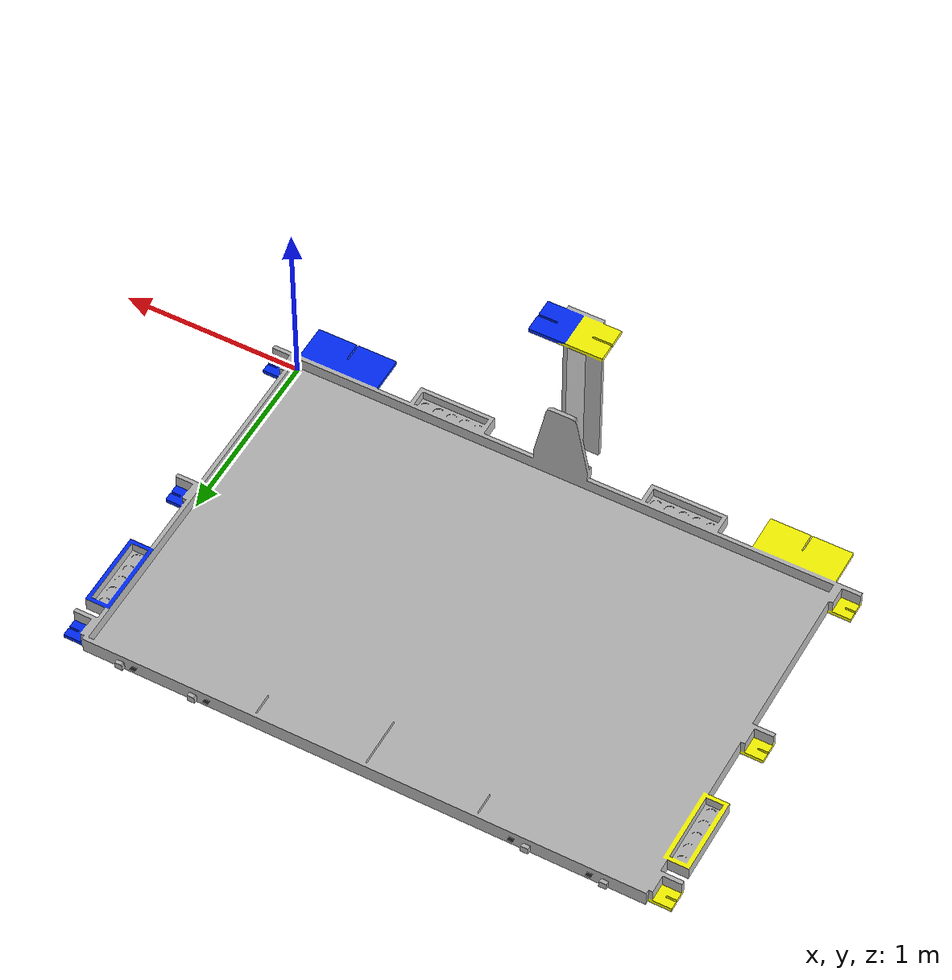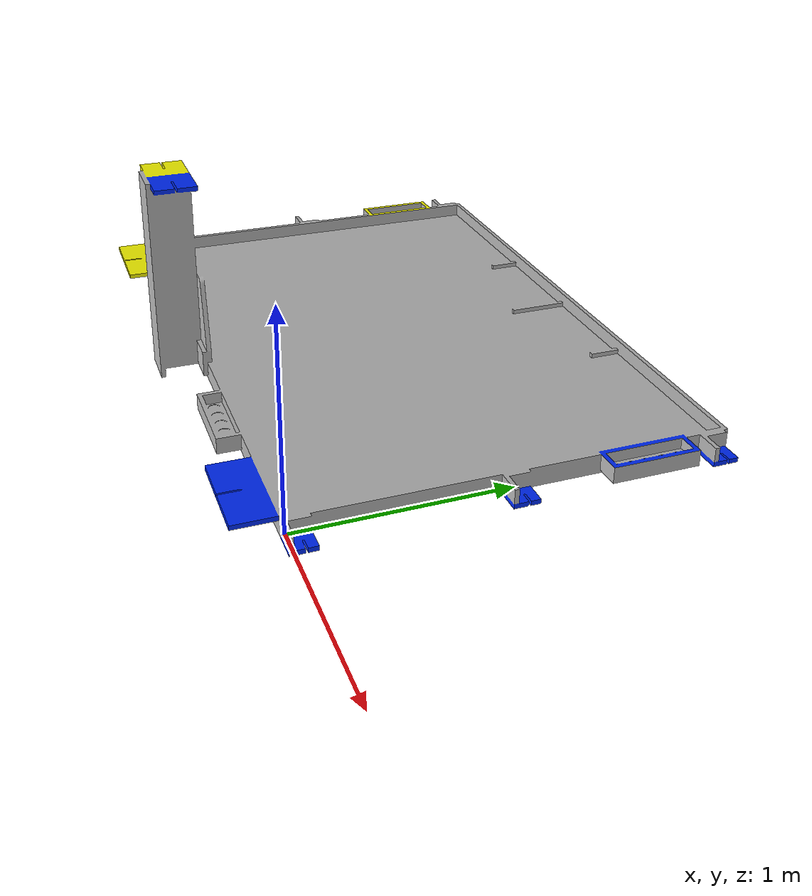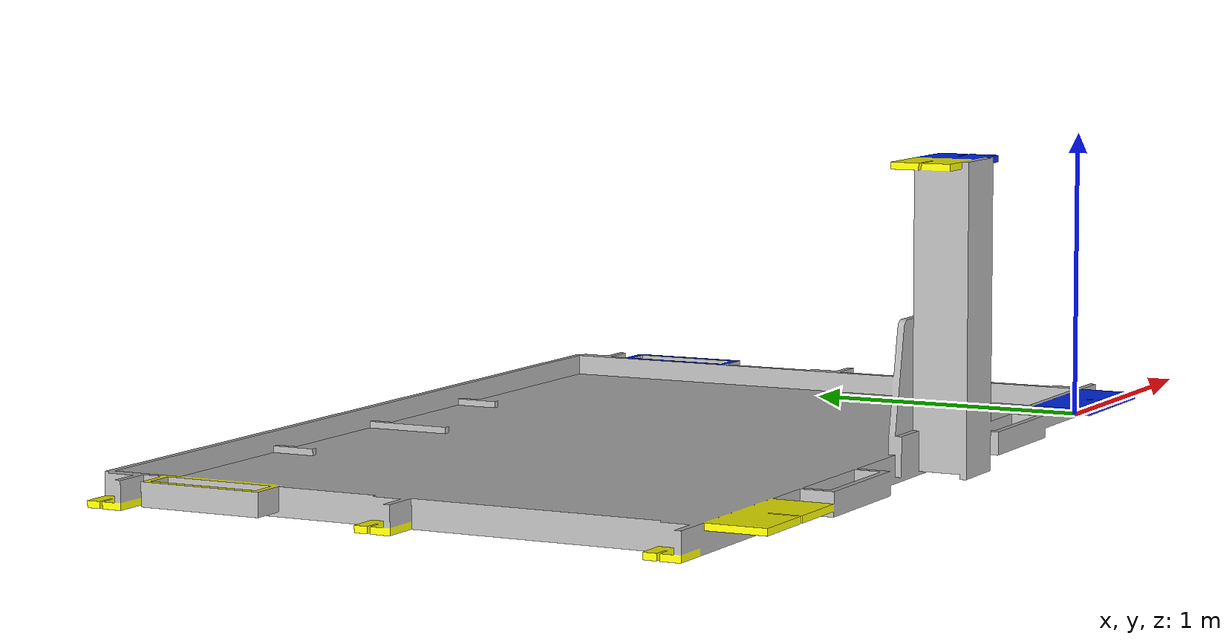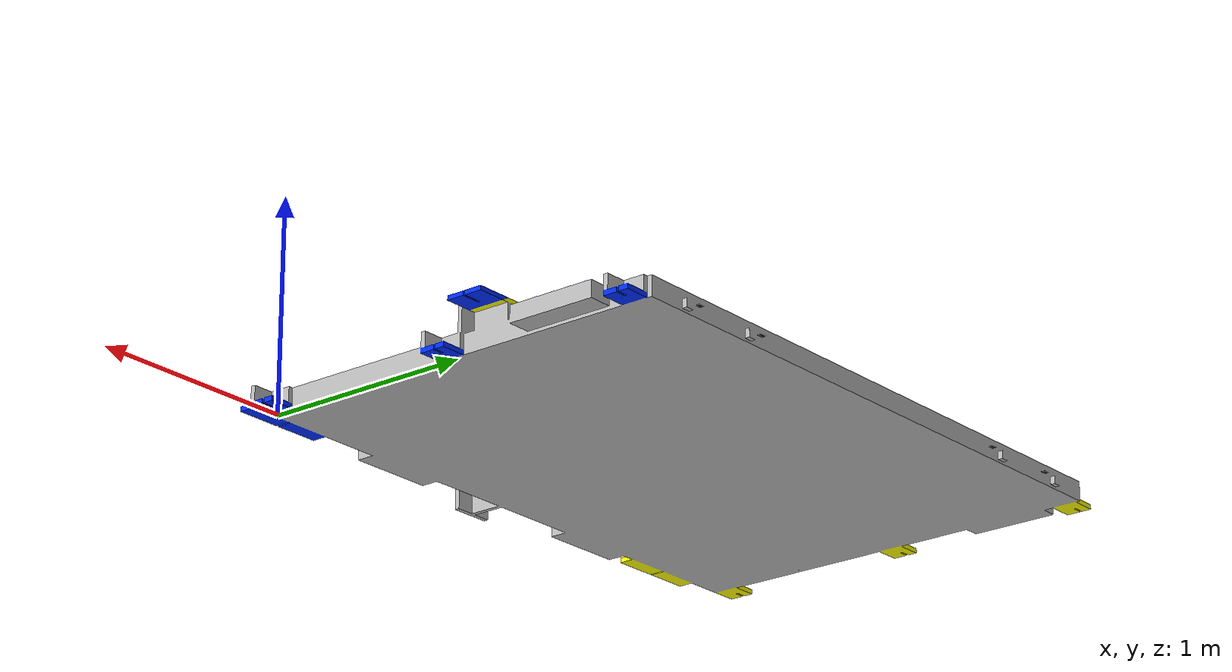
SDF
<?xml version="1.0" ?>
<sdf version="1.5">
  <model name="terrain2021">
    <static>true</static>
    <link name="link">
      <collision name="terrain2021">
        <pose>0 0 0 0 0 0</pose>
        <geometry>
          <mesh>
            <uri>model://terrain2021/terrain2021.dae</uri>
            <scale>1.0 1.0 1.0</scale>
          </mesh>
        </geometry>
      </collision>

      <visual name="rock">
        <cast_shadows>true</cast_shadows>
        <pose>0 0 0 0 0 0</pose>
        <geometry>
          <mesh>
            <uri>model://terrain2021/terrain2021.dae</uri>
            <scale>1.0 1.0 1.0</scale>
          </mesh>
        </geometry>

      </visual>
    </link>
  </model>
</sdf>
